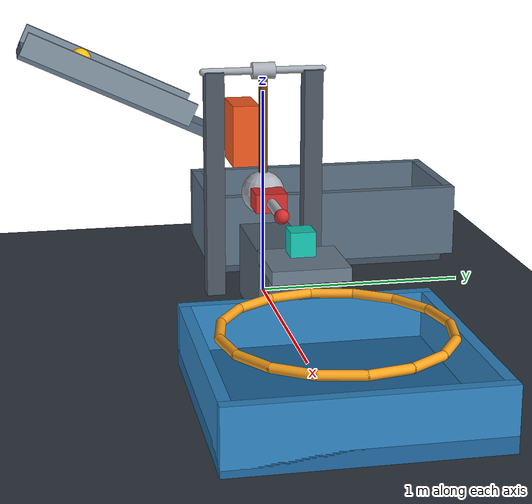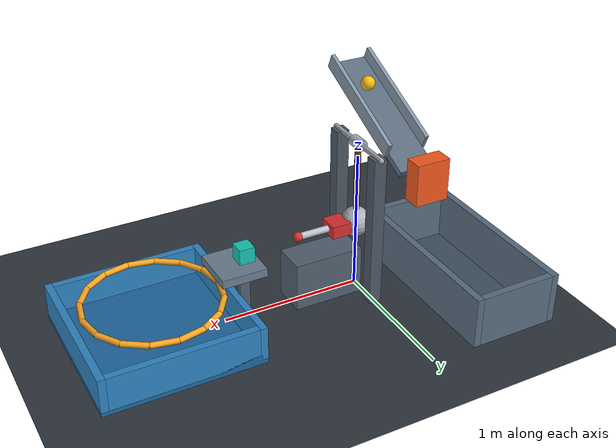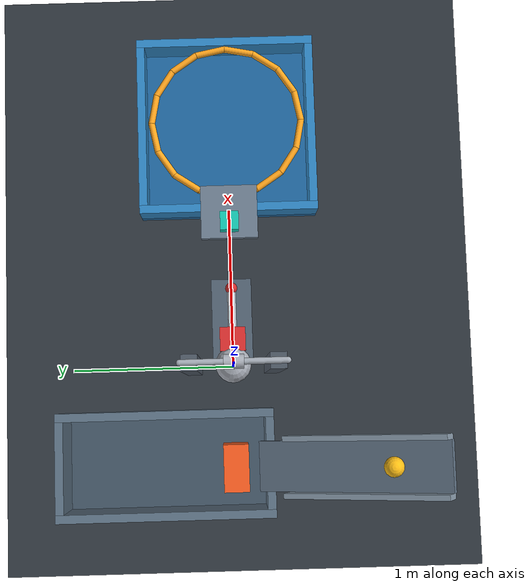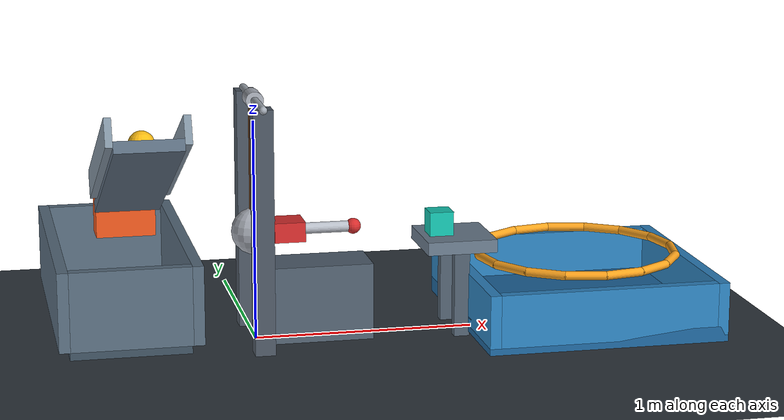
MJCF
<mujoco model="passive_ramp_hammer_gap_hoop_corrected">
  <compiler angle="degree" autolimits="true" inertiafromgeom="true"/>
  <option timestep="0.002" gravity="0 0 -9.81" integrator="implicitfast" solver="Newton" iterations="100" tolerance="1e-10" cone="elliptic"/>
  <size njmax="2000" nconmax="400"/>

  <visual>
    <headlight ambient="0.35 0.35 0.35" diffuse="0.75 0.75 0.75" specular="0.2 0.2 0.2"/>
    <map znear="0.01" zfar="30"/>
  </visual>

  <worldbody>
    <light name="overhead_light" pos="0 -2 5" dir="0 0 -1" directional="true"/>
    <camera name="overview" pos="3.6 -4.5 3.0" xyaxes="0.78 0.62 0 -0.30 0.38 0.875"/>
    <geom name="floor" type="plane" size="5 5 0.1" friction="1 0.01 0.01" condim="6" rgba="0.18 0.21 0.24 1"/>

    <!-- The initial ball contact point is 0.800 m uphill along the ramp surface. -->
    <body name="ball" pos="-0.579555 -0.831805 1.087942">
      <freejoint name="ball_free"/>
      <geom name="ball_sphere" type="sphere" size="0.055" mass="0.075" friction="0.6 0.002 0.0002" condim="6" solref="0.008 1" rgba="1 0.75 0.08 1"/>
    </body>

    <body name="ramp" pos="-0.579555 -0.639034 0.909782" quat="0.976296007 -0.216439614 0 0">
      <geom name="ramp_surface" type="box" size="0.14 0.55 0.025" friction="0.6 0.002 0.00005" condim="6" solref="0.008 1" rgba="0.36 0.43 0.50 1"/>
      <geom name="ramp_left_rail" type="box" pos="-0.155 -0.09 0.06" size="0.015 0.46 0.06" friction="0.4 0.002 0.00005" condim="6" rgba="0.52 0.59 0.65 1"/>
      <geom name="ramp_right_rail" type="box" pos="0.155 -0.09 0.06" size="0.015 0.46 0.06" friction="0.4 0.002 0.00005" condim="6" rgba="0.52 0.59 0.65 1"/>
    </body>

    <!-- Prop motion is perpendicular to the hammer's swing plane. -->
    <body name="prop" pos="-0.579555 0 0.679709">
      <joint name="prop_slide" type="slide" axis="0 1 0" range="0 0.52" damping="0.02" frictionloss="0.005" armature="0.0001" solreflimit="0.008 1"/>
      <geom name="prop_support" type="box" size="0.13 0.07 0.16" mass="0.035" friction="0.015 0.001 0.0001" condim="3" solref="0.008 1" rgba="0.95 0.35 0.12 1"/>
    </body>

    <body name="hammer" pos="0 0 1.10">
      <joint name="hammer_hinge" type="hinge" axis="0 1 0" range="-100 78" damping="0.035" frictionloss="0.012" armature="0.0001"/>
      <geom name="hammer_handle" type="capsule" fromto="0 0 0 0 0 -0.60" size="0.022" mass="0.045" friction="0.015 0.001 0.0001" condim="3" solref="0.008 1" rgba="0.45 0.25 0.10 1"/>
      <geom name="hammer_head" type="sphere" pos="0 0 -0.60" size="0.105" mass="0.32" friction="0.015 0.001 0.0001" condim="3" solref="0.008 1" rgba="0.68 0.70 0.74 1"/>
      <geom name="hammer_hub" type="cylinder" quat="0.707106781 0.707106781 0 0" size="0.04 0.055" mass="0.025" contype="0" conaffinity="0" rgba="0.68 0.70 0.74 1"/>
    </body>

    <!-- The nose traverses the gap from x=0.52 to x=0.76 before striking the block. -->
    <body name="peg" pos="0.15 0 0.50">
      <joint name="peg_slide" type="slide" axis="1 0 0" range="0 0.62" damping="0.03" frictionloss="0.005" armature="0.0001" solreflimit="0.008 1"/>
      <geom name="peg_impact_cap" type="box" size="0.07 0.075 0.045" mass="0.085" friction="0.05 0.002 0.0001" condim="3" solref="0.008 1" rgba="0.85 0.18 0.18 1"/>
      <geom name="peg_shaft" type="capsule" fromto="0.02 0 0 0.30 0 0" size="0.025" mass="0.035" friction="0.05 0.002 0.0001" condim="3" solref="0.008 1" rgba="0.74 0.76 0.80 1"/>
      <geom name="peg_nose" type="sphere" pos="0.30 0 0" size="0.035" mass="0.020" friction="0.05 0.002 0.0001" condim="3" solref="0.008 1" rgba="0.85 0.18 0.18 1"/>
    </body>

    <body name="block" pos="0.85 0 0.50">
      <freejoint name="block_free"/>
      <geom name="block_payload" type="box" size="0.055 0.055 0.055" mass="0.10" friction="0.05 0.002 0.0001" condim="6" solref="0.008 1" rgba="0.08 0.78 0.70 1"/>
    </body>

    <body name="hammer_frame" pos="0 0 0">
      <geom name="hammer_frame_left_post" type="box" pos="0 -0.24 0.55" size="0.045 0.045 0.55" rgba="0.30 0.34 0.39 1"/>
      <geom name="hammer_frame_right_post" type="box" pos="0 0.24 0.55" size="0.045 0.045 0.55" rgba="0.30 0.34 0.39 1"/>
      <geom name="hammer_frame_axle" type="capsule" fromto="0 -0.29 1.10 0 0.29 1.10" size="0.018" contype="0" conaffinity="0" rgba="0.65 0.68 0.72 1"/>
    </body>

    <body name="striker_platform" pos="0.27 0 0.175">
      <geom name="striker_platform_base" type="box" size="0.25 0.12 0.175" rgba="0.32 0.38 0.44 1"/>
    </body>

    <body name="payload_ledge" pos="0.92 0 0">
      <geom name="payload_ledge_top" type="box" pos="0 0 0.415" size="0.16 0.17 0.03" friction="0.05 0.002 0.0001" condim="3" solref="0.008 1" rgba="0.42 0.49 0.56 1"/>
      <geom name="payload_ledge_left_leg" type="box" pos="0 -0.135 0.1925" size="0.035 0.025 0.1925" rgba="0.32 0.38 0.44 1"/>
      <geom name="payload_ledge_right_leg" type="box" pos="0 0.135 0.1925" size="0.035 0.025 0.1925" rgba="0.32 0.38 0.44 1"/>
    </body>

    <!-- High rolling friction in this tray dissipates the trigger ball's motion. -->
    <body name="ball_tray" pos="-0.579555 0.42 0">
      <geom name="ball_tray_bottom" type="box" pos="0 0 0.025" size="0.27 0.60 0.025" friction="1.2 0.03 0.015" condim="6" solref="0.01 1" rgba="0.25 0.32 0.38 1"/>
      <geom name="ball_tray_left_wall" type="box" pos="-0.295 0 0.23" size="0.025 0.65 0.18" friction="1.2 0.03 0.015" condim="6" solref="0.01 1" rgba="0.35 0.43 0.50 1"/>
      <geom name="ball_tray_right_wall" type="box" pos="0.295 0 0.23" size="0.025 0.65 0.18" friction="1.2 0.03 0.015" condim="6" solref="0.01 1" rgba="0.35 0.43 0.50 1"/>
      <geom name="ball_tray_back_wall" type="box" pos="0 -0.625 0.23" size="0.27 0.025 0.18" friction="1.2 0.03 0.015" condim="6" solref="0.01 1" rgba="0.35 0.43 0.50 1"/>
      <geom name="ball_tray_front_wall" type="box" pos="0 0.625 0.23" size="0.27 0.025 0.18" friction="1.2 0.03 0.015" condim="6" solref="0.01 1" rgba="0.35 0.43 0.50 1"/>
    </body>

    <!-- The hoop's near rim is now beneath the ledge edge, not ahead of the falling block. -->
    <body name="hoop" pos="1.50 0 0.33">
      <geom name="hoop_segment_01" type="capsule" fromto="0.46 0 0 0.424985 0.176034 0" size="0.02" friction="0.3 0.005 0.001" solref="0.008 1" rgba="1 0.65 0.12 1"/>
      <geom name="hoop_segment_02" type="capsule" fromto="0.424985 0.176034 0 0.325269 0.325269 0" size="0.02" friction="0.3 0.005 0.001" solref="0.008 1" rgba="1 0.65 0.12 1"/>
      <geom name="hoop_segment_03" type="capsule" fromto="0.325269 0.325269 0 0.176034 0.424985 0" size="0.02" friction="0.3 0.005 0.001" solref="0.008 1" rgba="1 0.65 0.12 1"/>
      <geom name="hoop_segment_04" type="capsule" fromto="0.176034 0.424985 0 0 0.46 0" size="0.02" friction="0.3 0.005 0.001" solref="0.008 1" rgba="1 0.65 0.12 1"/>
      <geom name="hoop_segment_05" type="capsule" fromto="0 0.46 0 -0.176034 0.424985 0" size="0.02" friction="0.3 0.005 0.001" solref="0.008 1" rgba="1 0.65 0.12 1"/>
      <geom name="hoop_segment_06" type="capsule" fromto="-0.176034 0.424985 0 -0.325269 0.325269 0" size="0.02" friction="0.3 0.005 0.001" solref="0.008 1" rgba="1 0.65 0.12 1"/>
      <geom name="hoop_segment_07" type="capsule" fromto="-0.325269 0.325269 0 -0.424985 0.176034 0" size="0.02" friction="0.3 0.005 0.001" solref="0.008 1" rgba="1 0.65 0.12 1"/>
      <geom name="hoop_segment_08" type="capsule" fromto="-0.424985 0.176034 0 -0.46 0 0" size="0.02" friction="0.3 0.005 0.001" solref="0.008 1" rgba="1 0.65 0.12 1"/>
      <geom name="hoop_segment_09" type="capsule" fromto="-0.46 0 0 -0.424985 -0.176034 0" size="0.02" friction="0.3 0.005 0.001" solref="0.008 1" rgba="1 0.65 0.12 1"/>
      <geom name="hoop_segment_10" type="capsule" fromto="-0.424985 -0.176034 0 -0.325269 -0.325269 0" size="0.02" friction="0.3 0.005 0.001" solref="0.008 1" rgba="1 0.65 0.12 1"/>
      <geom name="hoop_segment_11" type="capsule" fromto="-0.325269 -0.325269 0 -0.176034 -0.424985 0" size="0.02" friction="0.3 0.005 0.001" solref="0.008 1" rgba="1 0.65 0.12 1"/>
      <geom name="hoop_segment_12" type="capsule" fromto="-0.176034 -0.424985 0 0 -0.46 0" size="0.02" friction="0.3 0.005 0.001" solref="0.008 1" rgba="1 0.65 0.12 1"/>
      <geom name="hoop_segment_13" type="capsule" fromto="0 -0.46 0 0.176034 -0.424985 0" size="0.02" friction="0.3 0.005 0.001" solref="0.008 1" rgba="1 0.65 0.12 1"/>
      <geom name="hoop_segment_14" type="capsule" fromto="0.176034 -0.424985 0 0.325269 -0.325269 0" size="0.02" friction="0.3 0.005 0.001" solref="0.008 1" rgba="1 0.65 0.12 1"/>
      <geom name="hoop_segment_15" type="capsule" fromto="0.325269 -0.325269 0 0.424985 -0.176034 0" size="0.02" friction="0.3 0.005 0.001" solref="0.008 1" rgba="1 0.65 0.12 1"/>
      <geom name="hoop_segment_16" type="capsule" fromto="0.424985 -0.176034 0 0.46 0 0" size="0.02" friction="0.3 0.005 0.001" solref="0.008 1" rgba="1 0.65 0.12 1"/>
    </body>

    <body name="cup" pos="1.50 0 0">
      <geom name="cup_bottom" type="box" pos="0 0 0.055" size="0.55 0.55 0.035" friction="1.2 0.03 0.015" condim="6" solref="0.01 1" rgba="0.12 0.40 0.62 1"/>
      <geom name="cup_left_wall" type="box" pos="-0.525 0 0.17" size="0.025 0.55 0.12" friction="1.2 0.03 0.015" condim="6" solref="0.01 1" rgba="0.18 0.52 0.76 1"/>
      <geom name="cup_right_wall" type="box" pos="0.525 0 0.17" size="0.025 0.55 0.12" friction="1.2 0.03 0.015" condim="6" solref="0.01 1" rgba="0.18 0.52 0.76 1"/>
      <geom name="cup_back_wall" type="box" pos="0 -0.525 0.17" size="0.50 0.025 0.12" friction="1.2 0.03 0.015" condim="6" solref="0.01 1" rgba="0.18 0.52 0.76 1"/>
      <geom name="cup_front_wall" type="box" pos="0 0.525 0.17" size="0.50 0.025 0.12" friction="1.2 0.03 0.015" condim="6" solref="0.01 1" rgba="0.18 0.52 0.76 1"/>
    </body>
  </worldbody>

  <keyframe>
    <key name="start" qpos="-0.579555 -0.831805 1.087942 1 0 0 0 0 1.308996939 0 0.85 0 0.50 1 0 0 0"/>
  </keyframe>
</mujoco>
